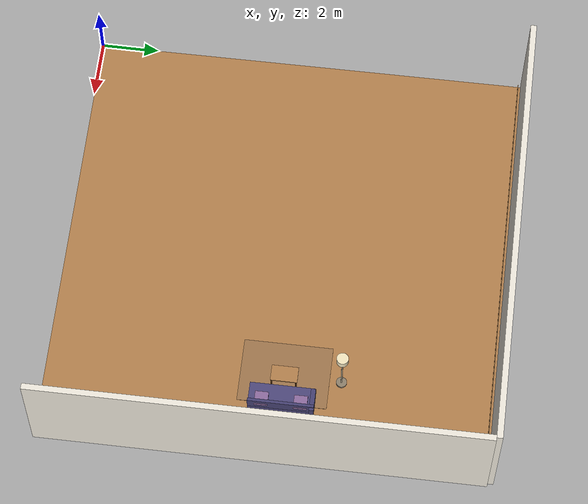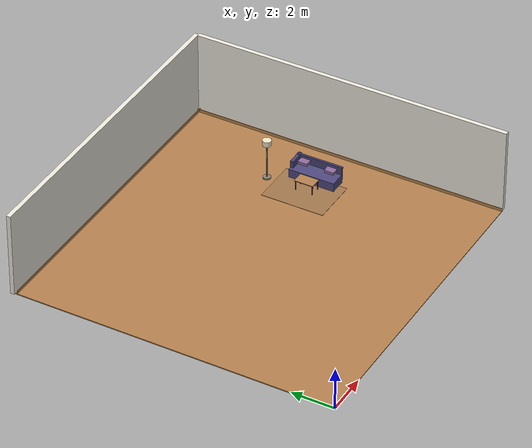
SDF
<sdf version="1.6">
 <world name="study_room">
  <model name="floor">
   <static>true</static>
   <pose>7.5 7.5 -0.025 0 0 0</pose>
   <link name="link">
    <collision name="col"><geometry><box><size>15.0 15.0 0.05</size></box></geometry></collision>
    <visual name="vis">
     <geometry><box><size>15.0 15.0 0.05</size></box></geometry>
     <material>
      <script><uri>file://media/materials/scripts/gazebo.material</uri><name>Gazebo/Wood</name></script>
      <ambient>0.42 0.27 0.13 1</ambient>
      <diffuse>0.42 0.27 0.13 1</diffuse>
      <specular>0.18 0.10 0.04 30</specular>
     </material>
    </visual>
   </link>
  </model>
  <model name="wall_north">
   <static>true</static>
   <pose>7.5 15.1 2.0 0 0 0</pose>
   <link name="link">
    <collision name="col"><geometry><box><size>15.2 0.2 4.0</size></box></geometry></collision>
    <visual name="vis">
     <geometry><box><size>15.2 0.2 4.0</size></box></geometry>
     <material><ambient>0.93 0.91 0.86 1</ambient><diffuse>0.93 0.91 0.86 1</diffuse></material>
    </visual>
   </link>
  </model>
  <model name="wall_east">
   <static>true</static>
   <pose>15.1 7.5 2.0 0 0 0</pose>
   <link name="link">
    <collision name="col"><geometry><box><size>0.2 15.0 4.0</size></box></geometry></collision>
    <visual name="vis">
     <geometry><box><size>0.2 15.0 4.0</size></box></geometry>
     <material><ambient>0.93 0.91 0.86 1</ambient><diffuse>0.93 0.91 0.86 1</diffuse></material>
    </visual>
   </link>
  </model>
  <model name="baseboard_n">
   <static>true</static>
   <pose>7.5 14.91 0.08 0 0 0</pose>
   <link name="link">
    <visual name="vis">
     <geometry><box><size>15.0 0.02 0.15</size></box></geometry>
     <material>
      <ambient>0.70 0.50 0.28 1</ambient>
      <diffuse>0.70 0.50 0.28 1</diffuse>
      <specular>0.2 0.15 0.08 20</specular>
     </material>
    </visual>
   </link>
  </model>
  <model name="baseboard_e">
   <static>true</static>
   <pose>14.91 7.5 0.08 0 0 0</pose>
   <link name="link">
    <visual name="vis">
     <geometry><box><size>0.02 15.0 0.15</size></box></geometry>
     <material>
      <ambient>0.70 0.50 0.28 1</ambient>
      <diffuse>0.70 0.50 0.28 1</diffuse>
      <specular>0.2 0.15 0.08 20</specular>
     </material>
    </visual>
   </link>
  </model>
  <model name="sofa_base">
   <static>true</static>
   <pose>13.0 8.0 0.22 0 0 1.5708</pose>
   <link name="link">
    <collision name="col"><geometry><box><size>2.2 0.80 0.44</size></box></geometry></collision>
    <visual name="vis">
     <geometry><box><size>2.2 0.80 0.44</size></box></geometry>
     <material>
      <ambient>0.30 0.28 0.48 1</ambient>
      <diffuse>0.30 0.28 0.48 1</diffuse>
      <specular>0.04 0.04 0.06 8</specular>
     </material>
    </visual>
   </link>
  </model>
  <model name="sofa_back">
   <static>true</static>
   <pose>13.38 8.0 0.60 0 0 1.5708</pose>
   <link name="link">
    <collision name="col"><geometry><box><size>2.2 0.10 0.44</size></box></geometry></collision>
    <visual name="vis">
     <geometry><box><size>2.2 0.10 0.44</size></box></geometry>
     <material><ambient>0.27 0.25 0.44 1</ambient><diffuse>0.27 0.25 0.44 1</diffuse></material>
    </visual>
   </link>
  </model>
  <model name="sofa_arm_r">
   <static>true</static>
   <pose>13.14 9.03 0.48 0 0 1.5708</pose>
   <link name="link">
    <collision name="col"><geometry><box><size>0.16 0.78 0.60</size></box></geometry></collision>
    <visual name="vis">
     <geometry><box><size>0.16 0.78 0.60</size></box></geometry>
     <material><ambient>0.27 0.25 0.44 1</ambient><diffuse>0.27 0.25 0.44 1</diffuse></material>
    </visual>
   </link>
  </model>
  <model name="sofa_pillow_l">
   <static>true</static>
   <pose>13.22 7.35 0.62 0.0 0.0 1.5708</pose>
   <link name="link">
    <visual name="vis">
     <geometry><box><size>0.45 0.45 0.12</size></box></geometry>
     <material><ambient>0.55 0.42 0.62 1</ambient><diffuse>0.55 0.42 0.62 1</diffuse></material>
    </visual>
   </link>
  </model>
  <model name="sofa_pillow_r">
   <static>true</static>
   <pose>13.22 8.65 0.62 0.0 0.0 1.5708</pose>
   <link name="link">
    <visual name="vis">
     <geometry><box><size>0.45 0.45 0.12</size></box></geometry>
     <material><ambient>0.55 0.42 0.62 1</ambient><diffuse>0.55 0.42 0.62 1</diffuse></material>
    </visual>
   </link>
  </model>
  <model name="sofa_foot_fr">
   <static>true</static>
   <pose>13.06 8.98 0.04 0 0 0</pose>
   <link name="link">
    <collision name="col"><geometry><box><size>0.06 0.06 0.08</size></box></geometry></collision>
    <visual name="vis">
     <geometry><box><size>0.06 0.06 0.08</size></box></geometry>
     <material><ambient>0.35 0.20 0.07 1</ambient><diffuse>0.35 0.20 0.07 1</diffuse></material>
    </visual>
   </link>
  </model>
  <model name="sofa_foot_br">
   <static>true</static>
   <pose>13.44 8.98 0.04 0 0 0</pose>
   <link name="link">
    <collision name="col"><geometry><box><size>0.06 0.06 0.08</size></box></geometry></collision>
    <visual name="vis">
     <geometry><box><size>0.06 0.06 0.08</size></box></geometry>
     <material><ambient>0.35 0.20 0.07 1</ambient><diffuse>0.35 0.20 0.07 1</diffuse></material>
    </visual>
   </link>
  </model>
  <model name="coffee_top">
   <static>true</static>
   <pose>12.2 8.0 0.48 0 0 1.5708</pose>
   <link name="link">
    <collision name="col"><geometry><box><size>0.90 0.55 0.04</size></box></geometry></collision>
    <visual name="vis">
     <geometry><box><size>0.90 0.55 0.04</size></box></geometry>
     <material>
      <script><uri>file://media/materials/scripts/gazebo.material</uri><name>Gazebo/Wood</name></script>
      <ambient>0.48 0.28 0.10 1</ambient>
      <diffuse>0.48 0.28 0.10 1</diffuse>
      <specular>0.55 0.40 0.15 80</specular>
     </material>
    </visual>
   </link>
  </model>
  <model name="coffee_leg_fl">
   <static>true</static>
   <pose>11.97 7.59 0.22 0 0 0</pose>
   <link name="link">
    <collision name="col">
     <geometry><cylinder><radius>0.022</radius><length>0.44</length></cylinder></geometry>
    </collision>
    <visual name="vis">
     <geometry><cylinder><radius>0.022</radius><length>0.44</length></cylinder></geometry>
     <material><ambient>0.38 0.22 0.07 1</ambient><diffuse>0.38 0.22 0.07 1</diffuse></material>
    </visual>
   </link>
  </model>
  <model name="coffee_leg_fr">
   <static>true</static>
   <pose>12.43 7.59 0.22 0 0 0</pose>
   <link name="link">
    <collision name="col">
     <geometry><cylinder><radius>0.022</radius><length>0.44</length></cylinder></geometry>
    </collision>
    <visual name="vis">
     <geometry><cylinder><radius>0.022</radius><length>0.44</length></cylinder></geometry>
     <material><ambient>0.38 0.22 0.07 1</ambient><diffuse>0.38 0.22 0.07 1</diffuse></material>
    </visual>
   </link>
  </model>
  <model name="coffee_leg_bl">
   <static>true</static>
   <pose>11.97 8.41 0.22 0 0 0</pose>
   <link name="link">
    <collision name="col">
     <geometry><cylinder><radius>0.022</radius><length>0.44</length></cylinder></geometry>
    </collision>
    <visual name="vis">
     <geometry><cylinder><radius>0.022</radius><length>0.44</length></cylinder></geometry>
     <material><ambient>0.38 0.22 0.07 1</ambient><diffuse>0.38 0.22 0.07 1</diffuse></material>
    </visual>
   </link>
  </model>
  <model name="coffee_leg_br">
   <static>true</static>
   <pose>12.43 8.41 0.22 0 0 0</pose>
   <link name="link">
    <collision name="col">
     <geometry><cylinder><radius>0.022</radius><length>0.44</length></cylinder></geometry>
    </collision>
    <visual name="vis">
     <geometry><cylinder><radius>0.022</radius><length>0.44</length></cylinder></geometry>
     <material><ambient>0.38 0.22 0.07 1</ambient><diffuse>0.38 0.22 0.07 1</diffuse></material>
    </visual>
   </link>
  </model>
  <model name="floor_lamp_pole">
   <static>true</static>
   <pose>12.1 9.9 0.9 0 0 0</pose>
   <link name="link">
    <collision name="col">
     <geometry><cylinder><radius>0.025</radius><length>1.8</length></cylinder></geometry>
    </collision>
    <visual name="vis">
     <geometry><cylinder><radius>0.025</radius><length>1.8</length></cylinder></geometry>
     <material>
      <ambient>0.65 0.60 0.50 1</ambient>
      <diffuse>0.65 0.60 0.50 1</diffuse>
      <specular>0.9 0.85 0.65 100</specular>
     </material>
    </visual>
   </link>
  </model>
  <model name="floor_lamp_base">
   <static>true</static>
   <pose>12.1 9.9 0.04 0 0 0</pose>
   <link name="link">
    <collision name="col">
     <geometry><cylinder><radius>0.18</radius><length>0.08</length></cylinder></geometry>
    </collision>
    <visual name="vis">
     <geometry><cylinder><radius>0.18</radius><length>0.08</length></cylinder></geometry>
     <material><ambient>0.55 0.50 0.42 1</ambient><diffuse>0.55 0.50 0.42 1</diffuse></material>
    </visual>
   </link>
  </model>
  <model name="floor_lamp_shade">
   <static>true</static>
   <pose>12.1 9.9 1.88 0 0 0</pose>
   <link name="link">
    <visual name="vis">
     <geometry><cylinder><radius>0.20</radius><length>0.25</length></cylinder></geometry>
     <material>
      <ambient>0.95 0.90 0.75 1</ambient>
      <diffuse>0.95 0.90 0.75 1</diffuse>
      <specular>0.1 0.1 0.08 10</specular>
     </material>
    </visual>
   </link>
  </model>
  <model name="rug">
   <static>true</static>
   <pose>12.0 8.0 0.008 0 0 1.5708</pose>
   <link name="link">
    <visual name="vis">
     <geometry><box><size>3.0 2.2 0.015</size></box></geometry>
     <material>
      <ambient>0.62 0.46 0.30 1</ambient>
      <diffuse>0.62 0.46 0.30 1</diffuse>
      <specular>0.02 0.02 0.01 5</specular>
     </material>
    </visual>
   </link>
  </model>
 </world>
</sdf>
